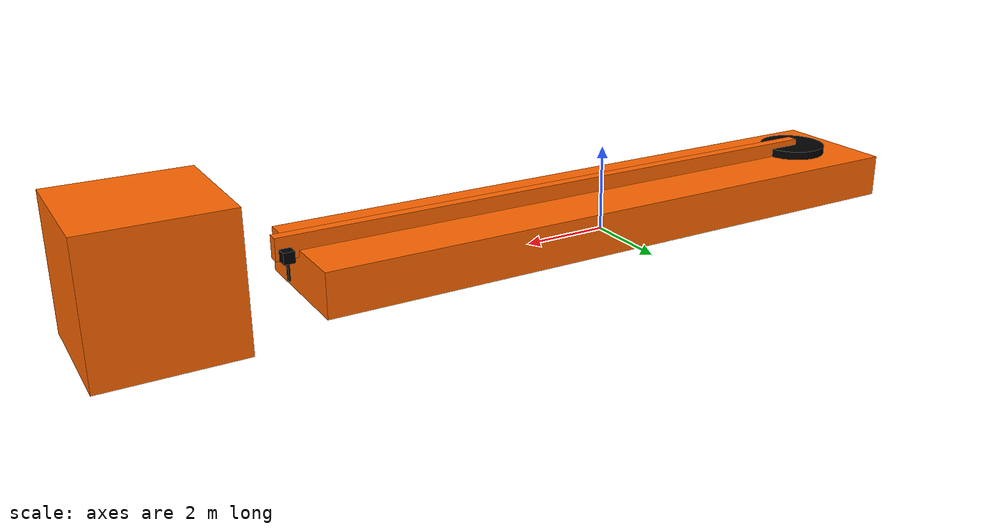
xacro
<?xml version="1.0" ?>
<robot name="cranebot" xmlns:xacro="http://www.ros.org/wiki/xacro">

  <xacro:include filename="$(find crane_description)/urdf/cranebot.gazebo" />

  <material name="black">
    <color rgba="0.0 0.0 0.0 1.0"/>
  </material>
  <material name="orange">
    <color rgba="1.0 0.4 0.0 1.0"/>
  </material>

  <xacro:property name="length" value="14"/>
  <xacro:property name="width" value="0.25"/>
  <xacro:property name="height" value="0.5"/>
  <xacro:property name="boom_mass" value="0.5"/>

  <link name="world"/>

  <joint name="fixed" type="fixed">
    <parent link="world"/>
    <child link="link1"/>
  </joint>

  <link name="link1">
    <visual>
      <origin xyz="0 0 0.5" rpy="0 0 0"/>
      <geometry>
        <box size="15 3 1"/>
      </geometry>
      <material name="orange"/>
    </visual>
    <inertial>
      <origin xyz="0 0 0.5" rpy="0 0 0"/>
      <mass value="1"/>
      <inertia ixx="1.0" ixy="0.0" ixz="1.0" iyy="0.0" iyz="1.0" izz="0.0"/>
    </inertial>
  </link>

  <joint name="azimuth" type="revolute"> <!--azimuth-->
    <parent link="link1"/>
    <child link="link2"/>
    <origin xyz="-6 0 1" rpy="0 0 0"/>
    <axis xyz="0 0 -1"/>
    <limit effort="10000" lower="-3.14" upper="3.14" velocity="0.01"/>
  </joint>

  <link name="link2">
    <visual>
      <origin xyz="0 0 0.1" rpy="0 0 0"/>
      <geometry>
        <cylinder radius="0.8" length="0.2"/>
      </geometry>
      <material name="black"/>
    </visual>
    <inertial>
      <origin xyz="0 0 0.1" rpy="0 0 0"/>
      <mass value="0.1"/>
      <inertia ixx="1.0" ixy="0.0" ixz="0.0" iyy="1.0" iyz="0.0" izz="1.0"/>
    </inertial>
  </link>

  <joint name="elevation" type="revolute"> <!--elevation-->
    <parent link="link2"/>
    <child link="prlink1"/>
    <origin xyz="0 0 0.1" rpy="0 0 0"/>
    <axis xyz="0 -1 0"/>
    <limit effort="10000" lower="0" upper="1.5" velocity="0.1"/>
    <dynamics damping="0.0" friction="100.0"/>
  </joint>

<!-- prismatic start -->

  <link name="prlink1">
    <visual>
      <origin xyz="${length/2} 0 0" rpy="0 0 0"/>
      <geometry>
        <box size="${length} ${width} ${height}"/>
      </geometry>
      <material name="orange"/>
    </visual>
    <inertial>
      <origin xyz="${length/2} 0 0" rpy="0 0 0"/>
      <mass value="${boom_mass}"/>
      <inertia ixx="1.0" ixy="0.0" ixz="0.0" iyy="1.0" iyz="0.0" izz="1.0"/>
    </inertial>
  </link>

  <joint name="prj1" type="prismatic">
    <parent link="prlink1"/>
    <child link="prlink2"/>
    <origin xyz="0 0 0" rpy="0 0 0"/>
    <axis xyz="1 0 0"/>
    <limit effort="10000" lower="0" upper="14" velocity="0.05"/>
  </joint>

  <link name="prlink2">
    <visual>
      <origin xyz="${length/2} 0 0" rpy="0 0 0"/>
      <geometry>
        <box size="${length} ${width} ${height}"/>
      </geometry>
      <material name="orange"/>
    </visual>
    <inertial>
      <origin xyz="${length/2} 0 0" rpy="0 0 0"/>
      <mass value="${boom_mass}"/>
      <inertia ixx="1.0" ixy="0.0" ixz="0.0" iyy="1.0" iyz="0.0" izz="1.0"/>
    </inertial>
  </link>

  <joint name="prj2" type="prismatic">
    <parent link="prlink2"/>
    <child link="prlink3"/>
    <origin xyz="0 0 0" rpy="0 0 0"/>
    <axis xyz="1 0 0"/>
    <limit effort="10000" lower="0" upper="14" velocity="0.05"/>
  </joint>

  <link name="prlink3">
    <visual>
      <origin xyz="${length/2} 0 0" rpy="0 0 0"/>
      <geometry>
        <box size="${length} ${width} ${height}"/>
      </geometry>
      <material name="orange"/>
    </visual>
    <inertial>
      <origin xyz="${length/2} 0 0" rpy="0 0 0"/>
      <mass value="${boom_mass}"/>
      <inertia ixx="1.0" ixy="0.0" ixz="0.0" iyy="1.0" iyz="0.0" izz="1.0"/>
    </inertial>
  </link>

  <joint name="prj3" type="prismatic">
    <parent link="prlink3"/>
    <child link="prlink4"/>
    <origin xyz="0 0 0" rpy="0 0 0"/>
    <axis xyz="1 0 0"/>
    <limit effort="10000" lower="0" upper="14" velocity="0.05"/>
  </joint>

  <link name="prlink4">
    <visual>
      <origin xyz="${length/2} 0 0" rpy="0 0 0"/>
      <geometry>
        <box size="${length} ${width} ${height}"/>
      </geometry>
      <material name="orange"/>
    </visual>
    <inertial>
      <origin xyz="${length/2} 0 0" rpy="0 0 0"/>
      <mass value="${boom_mass}"/>
      <inertia ixx="1.0" ixy="0.0" ixz="0.0" iyy="1.0" iyz="0.0" izz="1.0"/>
    </inertial>
  </link>

  <joint name="prj4" type="prismatic">
    <parent link="prlink4"/>
    <child link="prlink5"/>
    <origin xyz="0 0 0" rpy="0 0 0"/>
    <axis xyz="1 0 0"/>
    <limit effort="10000" lower="0" upper="14" velocity="0.05"/>
  </joint>

  <link name="prlink5">
    <visual>
      <origin xyz="${length/2} 0 0" rpy="0 0 0"/>
      <geometry>
        <box size="${length} ${width} ${height}"/>
      </geometry>
      <material name="orange"/>
    </visual>
    <inertial>
      <origin xyz="${length/2} 0 0" rpy="0 0 0"/>
      <mass value="${boom_mass}"/>
      <inertia ixx="1.0" ixy="0.0" ixz="0.0" iyy="1.0" iyz="0.0" izz="1.0"/>
    </inertial>
  </link>

<!-- start lidar-->

  <joint name="lidar_base_joint" type="continuous">
    <parent link="prlink5"/>
    <child link="lidar_base"/>
    <origin xyz="13.8 0.25 0" rpy="0 0 0"/>
    <axis xyz="0 1 0"/>
    <dynamics damping="0.5" friction="0.0"/>
  </joint>

  <link name="lidar_base">
    <visual>
      <origin xyz="0 0 -0.125" rpy="0 0 0"/>
      <geometry>
        <box size="0.25 0.25 0.25"/>
      </geometry>
      <material name="black"/>
    </visual>
    <inertial>
      <origin xyz="0 0 0" rpy="0 0 0"/>
      <mass value="1"/>
      <inertia ixx="1.0" ixy="0.0" ixz="0.0" iyy="1.0" iyz="0.0" izz="1.0"/>
    </inertial>
  </link>

  <joint name="lidar_joint" type="continuous">
    <parent link="lidar_base"/>
    <child link="lidar_mount"/>
    <origin xyz="0 0 -0.45" rpy="0 0 0"/>
    <axis xyz="0 0 1"/>
    <limit effort="30" velocity="3.14"/>
  </joint>

  <link name="lidar_mount">
    <visual>
      <origin xyz="0 0 0" rpy="0 0 0"/>
      <geometry>
        <box size="0.04 0.1 0.4"/>
      </geometry>
      <material name="black"/>
    </visual>
    <inertial>
      <origin xyz="0 0 0" rpy="0 0 0"/>
      <mass value="0.001"/>
      <inertia ixx="1.0" ixy="0.0" ixz="0.0" iyy="1.0" iyz="0.0" izz="1.0"/>
    </inertial>
  </link>

<!--end lidar, start load-->

  <joint name="free_joint" type="continuous"> <!--free joint-->
    <parent link="prlink5"/>
    <child link="link4"/>
    <origin xyz="16.5 0 0" rpy="0 0 0"/> <!--originally 14.5-->
    <axis xyz="0 1 0"/>
    <dynamics damping="10.0" friction="0.5"/>
  </joint>

  <link name="link4"> <!--this is mini link-->
    <inertial>
      <origin xyz="0 0 0" rpy="0 0 0"/>
      <mass value="0.001"/>
      <inertia ixx="1.0" ixy="0.0" ixz="0.0" iyy="1.0" iyz="0.0" izz="1.0"/>
    </inertial>
  </link>

  <joint name="cable" type="prismatic">
    <parent link="link4"/>
    <child link="load"/>
    <origin xyz="0 0 0" rpy="0 0 0"/>
    <axis xyz="0 0 1"/>
    <limit effort="1000" lower="-60.0" upper="0.0" velocity="0.1"/>
    <dynamics damping="0.0" friction="2.0"/>
  </joint>

  <link name="load">
    <collision>
      <origin xyz="0 0 -1.5" rpy="0 0 0"/>
      <geometry>
        <box size="0.01 0.01 0.01"/>
      </geometry>
    </collision>
    <visual>
      <origin xyz="0 0 0" rpy="0 0 0"/>
      <geometry>
        <box size="3.0 3.0 3.0"/>
      </geometry>
      <material name="orange"/>
    </visual>
    <inertial>
      <origin xyz="0 0 0" rpy="0 0 0"/>
      <mass value="0.1"/>
      <inertia ixx="1.0" ixy="0.0" ixz="0.0" iyy="1.0" iyz="0.0" izz="1.0"/>
    </inertial>
  </link>

  <transmission name="tran1">
    <type>transmission_interface/SimpleTransmission</type>
    <joint name="azimuth">
      <hardwareInterface>hardware_interface/EffortJointInterface</hardwareInterface>
    </joint>
    <actuator name="motor1">
      <hardwareInterface>hardware_interface/EffortJointInterface</hardwareInterface>
      <mechanicalReduction>1</mechanicalReduction>
    </actuator>
  </transmission>

  <transmission name="tran2">
    <type>transmission_interface/SimpleTransmission</type>
    <joint name="elevation">
      <hardwareInterface>hardware_interface/EffortJointInterface</hardwareInterface>
    </joint>
    <actuator name="motor2">
      <hardwareInterface>hardware_interface/EffortJointInterface</hardwareInterface>
      <mechanicalReduction>1</mechanicalReduction>
    </actuator>
  </transmission>

  <transmission name="tran3">
    <type>transmission_interface/SimpleTransmission</type>
    <joint name="prj1">
      <hardwareInterface>hardware_interface/EffortJointInterface</hardwareInterface>
    </joint>
    <actuator name="motor3">
      <hardwareInterface>hardware_interface/EffortJointInterface</hardwareInterface>
      <mechanicalReduction>1</mechanicalReduction>
    </actuator>
  </transmission>

  <transmission name="tran4">
    <type>transmission_interface/SimpleTransmission</type>
    <joint name="prj2">
      <hardwareInterface>hardware_interface/EffortJointInterface</hardwareInterface>
    </joint>
    <actuator name="motor4">
      <hardwareInterface>hardware_interface/EffortJointInterface</hardwareInterface>
      <mechanicalReduction>1</mechanicalReduction>
    </actuator>
  </transmission>

  <transmission name="tran5">
    <type>transmission_interface/SimpleTransmission</type>
    <joint name="prj3">
      <hardwareInterface>hardware_interface/EffortJointInterface</hardwareInterface>
    </joint>
    <actuator name="motor5">
      <hardwareInterface>hardware_interface/EffortJointInterface</hardwareInterface>
      <mechanicalReduction>1</mechanicalReduction>
    </actuator>
  </transmission>

  <transmission name="tran6">
    <type>transmission_interface/SimpleTransmission</type>
    <joint name="prj4">
      <hardwareInterface>hardware_interface/EffortJointInterface</hardwareInterface>
    </joint>
    <actuator name="motor6">
      <hardwareInterface>hardware_interface/EffortJointInterface</hardwareInterface>
      <mechanicalReduction>1</mechanicalReduction>
    </actuator>
  </transmission>

  <transmission name="tran7">
    <type>transmission_interface/SimpleTransmission</type>
    <joint name="lidar_base_joint">
      <hardwareInterface>hardware_interface/EffortJointInterface</hardwareInterface>
    </joint>
    <actuator name="motor7">
      <hardwareInterface>hardware_interface/EffortJointInterface</hardwareInterface>
      <mechanicalReduction>1</mechanicalReduction>
    </actuator>
  </transmission>

  <transmission name="tran7">
    <type>transmission_interface/SimpleTransmission</type>
    <joint name="lidar_joint">
      <hardwareInterface>hardware_interface/EffortJointInterface</hardwareInterface>
    </joint>
    <actuator name="motor7">
      <hardwareInterface>hardware_interface/EffortJointInterface</hardwareInterface>
      <mechanicalReduction>1</mechanicalReduction>
    </actuator>
  </transmission>

  <transmission name="tran8">
    <type>transmission_interface/SimpleTransmission</type>
    <joint name="free_joint">
      <hardwareInterface>hardware_interface/EffortJointInterface</hardwareInterface>
    </joint>
    <actuator name="motor8">
      <hardwareInterface>hardware_interface/EffortJointInterface</hardwareInterface>
      <mechanicalReduction>1</mechanicalReduction>
    </actuator>
  </transmission>

  <transmission name="tran9">
    <type>transmission_interface/SimpleTransmission</type>
    <joint name="cable">
      <hardwareInterface>hardware_interface/EffortJointInterface</hardwareInterface>
    </joint>
    <actuator name="motor9">
      <hardwareInterface>hardware_interface/EffortJointInterface</hardwareInterface>
      <mechanicalReduction>1</mechanicalReduction>
    </actuator>
  </transmission>

</robot>
